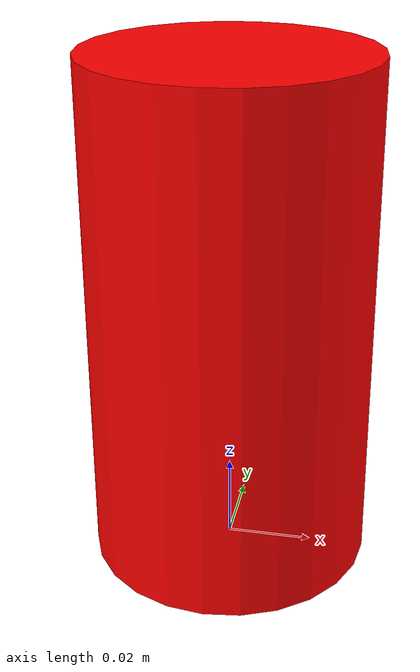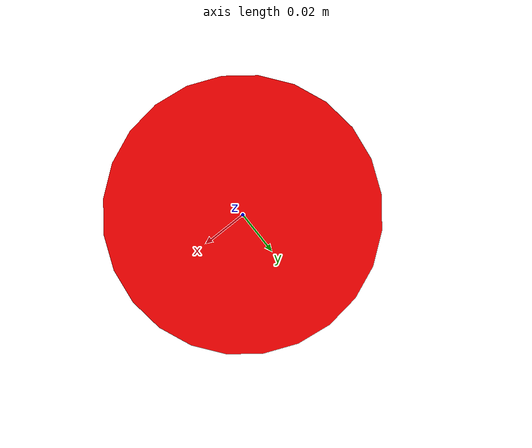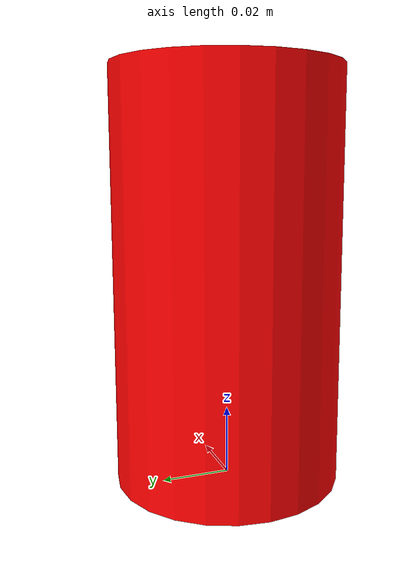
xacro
<?xml version="1.0"?>
<robot name="cola_can">
  <link name="can_link">
    <inertial>
      <mass value="0.35"/> <origin xyz="0 0 0.06"/>
      <inertia ixx="0.0005" ixy="0" ixz="0" iyy="0.0005" iyz="0" izz="0.0003"/>
    </inertial>
    <visual>
      <origin xyz="0 0 0.06"/>
      <geometry><cylinder radius="0.033" length="0.12"/></geometry>
      <material name="red"><color rgba="1 0 0 1"/></material>
    </visual>
    <collision>
      <origin xyz="0 0 0.06"/>
      <geometry><cylinder radius="0.033" length="0.12"/></geometry>
    </collision>
  </link>
  <gazebo reference="can_link">
    <material>Gazebo/Red</material>
    <mu1>1.0</mu1>
    <mu2>1.0</mu2>
  </gazebo>
</robot>
